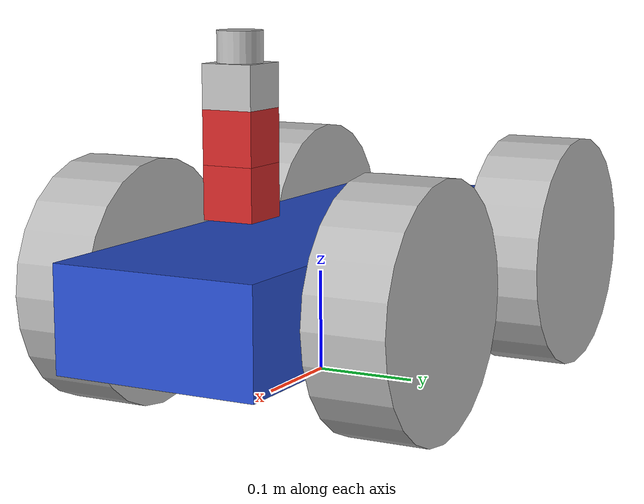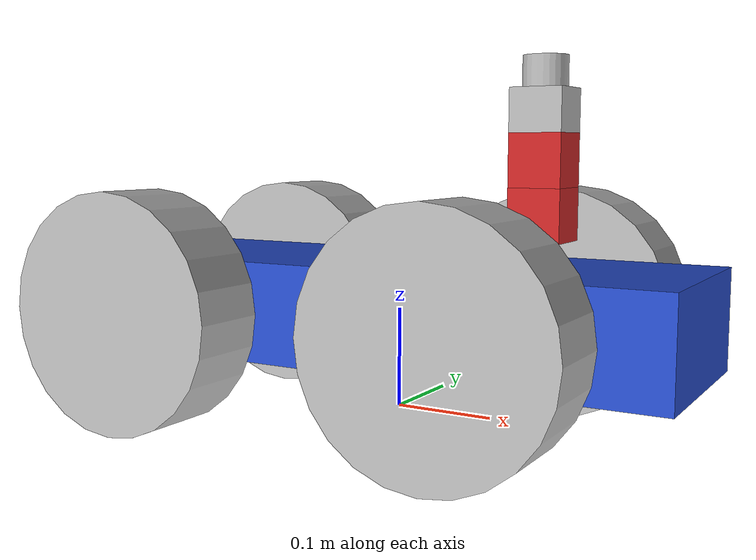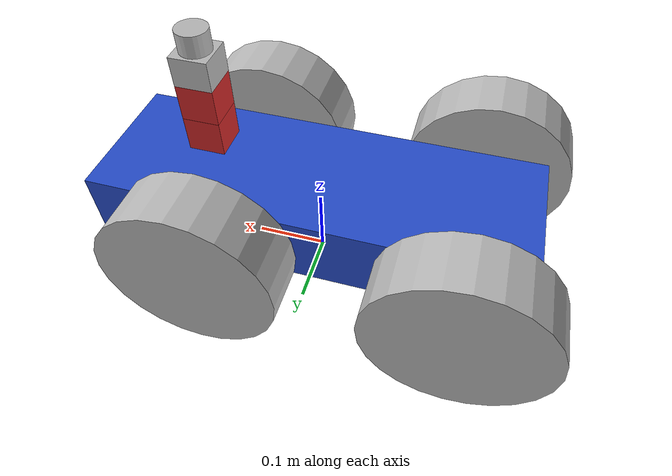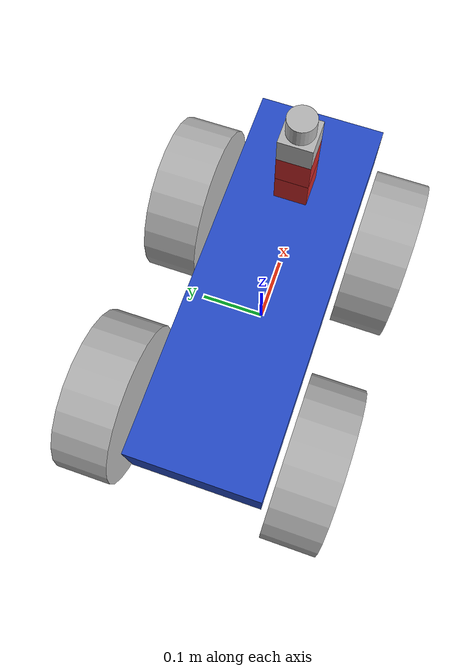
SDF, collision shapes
<?xml version='1.0'?>
<sdf version='1.7'>
  <model name='mobile_warehouse_robot'>
    <link name='base_link'>
      <pose>-0 -0 0.1 0 -0 0</pose>
      <self_collide>0</self_collide>
      <inertial>
        <pose>0 0 0 0 -0 0</pose>
        <inertia>
          <ixx>0.5</ixx>
          <ixy>0</ixy>
          <ixz>0</ixz>
          <iyy>0.5</iyy>
          <iyz>0</iyz>
          <izz>0.5</izz>
        </inertia>
        <mass>40</mass>
      </inertial>
      <enable_wind>0</enable_wind>
      <kinematic>0</kinematic>
      <gravity>1</gravity>
      <visual name='visual'>
        <pose>0 0 0.02 0 -0 0</pose>
        <material>
          <script>
            <uri>file://media/materials/scripts/gazebo.material</uri>
            <name>Gazebo/Blue</name>
          </script>
          <shader type='pixel'>
            <normal_map>__default__</normal_map>
          </shader>
        </material>
        <geometry>
          <box>
            <size>0.6 0.2 0.1</size>
          </box>
        </geometry>
        <transparency>0</transparency>
        <cast_shadows>1</cast_shadows>
      </visual>
      <collision name='collision'>
        <laser_retro>0</laser_retro>
        <max_contacts>10</max_contacts>
        <pose>0 0 0 0 -0 0</pose>
        <geometry>
          <box>
            <size>0.6 0.2 0.1</size>
          </box>
        </geometry>
        <surface>
          <friction>
            <ode>
              <mu>1</mu>
              <mu2>1</mu2>
              <fdir1>0 0 0</fdir1>
              <slip1>0</slip1>
              <slip2>0</slip2>
            </ode>
            <torsional>
              <coefficient>1</coefficient>
              <patch_radius>0</patch_radius>
              <surface_radius>0</surface_radius>
              <use_patch_radius>1</use_patch_radius>
              <ode>
                <slip>0</slip>
              </ode>
            </torsional>
          </friction>
          <bounce>
            <restitution_coefficient>0</restitution_coefficient>
            <threshold>1e+06</threshold>
          </bounce>
          <contact>
            <collide_without_contact>0</collide_without_contact>
            <collide_without_contact_bitmask>1</collide_without_contact_bitmask>
            <collide_bitmask>1</collide_bitmask>
            <ode>
              <soft_cfm>0</soft_cfm>
              <soft_erp>0.2</soft_erp>
              <kp>1e+13</kp>
              <kd>1</kd>
              <max_vel>0.01</max_vel>
              <min_depth>0</min_depth>
            </ode>
            <bullet>
              <split_impulse>1</split_impulse>
              <split_impulse_penetration_threshold>-0.01</split_impulse_penetration_threshold>
              <soft_cfm>0</soft_cfm>
              <soft_erp>0.2</soft_erp>
              <kp>1e+13</kp>
              <kd>1</kd>
            </bullet>
          </contact>
        </surface>
      </collision>
    </link>
    <link name='depth_camera'>
      <inertial>
        <mass>0.1</mass>
        <pose>0 0 0 0 -0 0</pose>
        <inertia>
          <ixx>1</ixx>
          <ixy>0</ixy>
          <ixz>0</ixz>
          <iyy>1</iyy>
          <iyz>0</iyz>
          <izz>1</izz>
        </inertia>
      </inertial>
      <pose>0.15 -0 0.25 0 -0 0</pose>
      <sensor name='depth_camera' type='depth'>
          <update_rate>5.0</update_rate>
          <camera name='head'>
              <horizontal_fov>1.8</horizontal_fov>
              <image>
                  <width>1200</width>
                  <height>1200</height>
                  <format>R8G8B8</format>
              </image>
              <clip>
                  <near>0.01</near>
                  <far>10.0</far>
              </clip>
              <depth_camera>
                  <clip>
                      <near>0.01</near>
                      <far>10.0</far>
                  </clip>
              </depth_camera>
              <noise>
                  <type>gaussian</type>
                  <mean>0</mean>
                  <stddev>0.007</stddev>
              </noise>
          </camera>
          <plugin name='gazebo_ros_depth_camera' filename='libgazebo_ros_camera.so'>
              <alwaysOn>true</alwaysOn>
              <updateRate>5.0</updateRate>
              <cameraName>rrbot/depth_camera</cameraName>
              <frameName>depth_camera_link</frameName>
              <imageTopicName>/depth_camera/image_raw</imageTopicName>
              <cameraInfoTopicName>/depth_camera/camera_info</cameraInfoTopicName>
              <depthImageTopicName>/depth_camera/depth/image_raw</depthImageTopicName>
              <pointCloudTopicName>/depth_camera/points</pointCloudTopicName>
              <pointCloudCutoff>0.01</pointCloudCutoff>
              <pointCloudCutoffMax>10.0</pointCloudCutoffMax>
          </plugin>
      </sensor>

      <self_collide>0</self_collide>
      <enable_wind>0</enable_wind>
      <kinematic>0</kinematic>
      <visual name='cam_visual'>
        <geometry>
          <box>
            <size>0.05 0.05 0.05</size>
          </box>
        </geometry>
        <material>
          <script>
            <uri>file://media/materials/scripts/gazebo.material</uri>
            <name>Gazebo/Red</name>
          </script>
          <shader type='pixel'/>
        </material>
        <pose>0 0 0 0 -0 0</pose>
        <transparency>0</transparency>
        <cast_shadows>1</cast_shadows>
      </visual>
      <collision name='cam_collision'>
        <laser_retro>0</laser_retro>
        <max_contacts>10</max_contacts>
        <pose>0 0 0 0 -0 0</pose>
        <geometry>
          <box>
            <size>0.05 0.05 0.05</size>
          </box>
        </geometry>
        <surface>
          <friction>
            <ode>
              <mu>1</mu>
              <mu2>1</mu2>
              <fdir1>0 0 0</fdir1>
              <slip1>0</slip1>
              <slip2>0</slip2>
            </ode>
            <torsional>
              <coefficient>1</coefficient>
              <patch_radius>0</patch_radius>
              <surface_radius>0</surface_radius>
              <use_patch_radius>1</use_patch_radius>
              <ode>
                <slip>0</slip>
              </ode>
            </torsional>
          </friction>
          <bounce>
            <restitution_coefficient>0</restitution_coefficient>
            <threshold>1e+06</threshold>
          </bounce>
          <contact>
            <collide_without_contact>0</collide_without_contact>
            <collide_without_contact_bitmask>1</collide_without_contact_bitmask>
            <collide_bitmask>1</collide_bitmask>
            <ode>
              <soft_cfm>0</soft_cfm>
              <soft_erp>0.2</soft_erp>
              <kp>1e+13</kp>
              <kd>1</kd>
              <max_vel>0.01</max_vel>
              <min_depth>0</min_depth>
            </ode>
            <bullet>
              <split_impulse>1</split_impulse>
              <split_impulse_penetration_threshold>-0.01</split_impulse_penetration_threshold>
              <soft_cfm>0</soft_cfm>
              <soft_erp>0.2</soft_erp>
              <kp>1e+13</kp>
              <kd>1</kd>
            </bullet>
          </contact>
        </surface>
      </collision>
    </link>
    <link name='camera'>
      <inertial>
        <mass>0.1</mass>
        <pose>0 0 0 0 -0 0</pose>
        <inertia>
          <ixx>1</ixx>
          <ixy>0</ixy>
          <ixz>0</ixz>
          <iyy>1</iyy>
          <iyz>0</iyz>
          <izz>1</izz>
        </inertia>
      </inertial>
      <pose>0.15 -0 0.2 0 -0 0</pose>
      <sensor name='camera1' type='camera'>
        <update_rate>30</update_rate>
        <camera name='head'>
          <horizontal_fov>1.8</horizontal_fov>
          <image>
            <width>1200</width>
            <height>1200</height>
            <format>R8G8B8</format>
          </image>
          <clip>
            <near>0.02</near>
            <far>300</far>
          </clip>
          <noise>
            <type>gaussian</type>
            <mean>0</mean>
            <stddev>0.007</stddev>
          </noise>
        </camera>
        <plugin name='camera_controller' filename='libgazebo_ros_camera.so'>
          <alwaysOn>1</alwaysOn>
          <updateRate>1</updateRate>
          <cameraName>rrbot/camera1</cameraName>
          <imageTopicName>image_raw</imageTopicName>
          <cameraInfoTopicName>camera_info</cameraInfoTopicName>
          <frameName>camera_link</frameName>
          <hackBaseline>0.07</hackBaseline>
          <distortionK1>0.0</distortionK1>
          <distortionK2>0.0</distortionK2>
          <distortionK3>0.0</distortionK3>
          <distortionT1>0.0</distortionT1>
          <distortionT2>0.0</distortionT2>
        </plugin>
      </sensor>
      <self_collide>0</self_collide>
      <enable_wind>0</enable_wind>
      <kinematic>0</kinematic>
      <visual name='cam_visual'>
        <geometry>
          <box>
            <size>0.05 0.05 0.05</size>
          </box>
        </geometry>
        <material>
          <script>
            <uri>file://media/materials/scripts/gazebo.material</uri>
            <name>Gazebo/Red</name>
          </script>
          <shader type='pixel'/>
        </material>
        <pose>0 0 0 0 -0 0</pose>
        <transparency>0</transparency>
        <cast_shadows>1</cast_shadows>
      </visual>
      <collision name='cam_collision'>
        <laser_retro>0</laser_retro>
        <max_contacts>10</max_contacts>
        <pose>0 0 0 0 -0 0</pose>
        <geometry>
          <box>
            <size>0.05 0.05 0.05</size>
          </box>
        </geometry>
        <surface>
          <friction>
            <ode>
              <mu>1</mu>
              <mu2>1</mu2>
              <fdir1>0 0 0</fdir1>
              <slip1>0</slip1>
              <slip2>0</slip2>
            </ode>
            <torsional>
              <coefficient>1</coefficient>
              <patch_radius>0</patch_radius>
              <surface_radius>0</surface_radius>
              <use_patch_radius>1</use_patch_radius>
              <ode>
                <slip>0</slip>
              </ode>
            </torsional>
          </friction>
          <bounce>
            <restitution_coefficient>0</restitution_coefficient>
            <threshold>1e+06</threshold>
          </bounce>
          <contact>
            <collide_without_contact>0</collide_without_contact>
            <collide_without_contact_bitmask>1</collide_without_contact_bitmask>
            <collide_bitmask>1</collide_bitmask>
            <ode>
              <soft_cfm>0</soft_cfm>
              <soft_erp>0.2</soft_erp>
              <kp>1e+13</kp>
              <kd>1</kd>
              <max_vel>0.01</max_vel>
              <min_depth>0</min_depth>
            </ode>
            <bullet>
              <split_impulse>1</split_impulse>
              <split_impulse_penetration_threshold>-0.01</split_impulse_penetration_threshold>
              <soft_cfm>0</soft_cfm>
              <soft_erp>0.2</soft_erp>
              <kp>1e+13</kp>
              <kd>1</kd>
            </bullet>
          </contact>
        </surface>
      </collision>
    </link>
    <link name='laser_link'>
      <inertial>
        <mass>0.1</mass>
        <pose>0 0 0 0 -0 0</pose>
        <inertia>
          <ixx>1</ixx>
          <ixy>0</ixy>
          <ixz>0</ixz>
          <iyy>1</iyy>
          <iyz>0</iyz>
          <izz>1</izz>
        </inertia>
      </inertial>
      <pose>0.15 0 0.31 0 -0 0</pose>
      <sensor name='laser' type='ray'>
        <pose>0.01 0 0.0175 0 -0 0</pose>
        <ray>
          <scan>
            <horizontal>
              <samples>181</samples>
              <resolution>0.2</resolution>
              <min_angle>-0.89</min_angle>
              <max_angle>0.89</max_angle>
            </horizontal>
            <vertical>
              <samples>1</samples>
              <min_angle>0</min_angle>
              <max_angle>0</max_angle>
            </vertical>
          </scan>
          <range>
            <min>0.08</min>
            <max>10</max>
            <resolution>0.01</resolution>
          </range>
        </ray>
        <always_on>1</always_on>
        <update_rate>10</update_rate>
        <visualize>1</visualize>
        <plugin name='laser' filename='libgazebo_ros_ray_sensor.so'>
          <ros>
            <namespace>/</namespace>
            <argument>--ros-args --remap ~/out:=scan</argument>
          </ros>
          <output_type>sensor_msgs/LaserScan</output_type>
        </plugin>
      </sensor>
      <self_collide>0</self_collide>
      <enable_wind>0</enable_wind>
      <kinematic>0</kinematic>
      <visual name='visual'>
        <geometry>
          <mesh>
            <uri>model://hokuyo/meshes/hokuyo.dae</uri>
          </mesh>
        </geometry>
        <material>
          <shader type='pixel'/>
        </material>
        <pose>0 0 0 0 -0 0</pose>
        <transparency>0</transparency>
        <cast_shadows>1</cast_shadows>
      </visual>
      <collision name='collision-base'>
        <laser_retro>0</laser_retro>
        <max_contacts>10</max_contacts>
        <pose>0 0 -0.0145 0 -0 0</pose>
        <geometry>
          <box>
            <size>0.05 0.05 0.041</size>
          </box>
        </geometry>
        <surface>
          <friction>
            <ode>
              <mu>3</mu>
              <mu2>3</mu2>
              <fdir1>0 0 0</fdir1>
              <slip1>0</slip1>
              <slip2>0</slip2>
            </ode>
            <torsional>
              <coefficient>1</coefficient>
              <patch_radius>0</patch_radius>
              <surface_radius>0</surface_radius>
              <use_patch_radius>1</use_patch_radius>
              <ode>
                <slip>0</slip>
              </ode>
            </torsional>
          </friction>
          <bounce>
            <restitution_coefficient>0</restitution_coefficient>
            <threshold>1e+06</threshold>
          </bounce>
          <contact>
            <collide_without_contact>0</collide_without_contact>
            <collide_without_contact_bitmask>1</collide_without_contact_bitmask>
            <collide_bitmask>1</collide_bitmask>
            <ode>
              <soft_cfm>0</soft_cfm>
              <soft_erp>0.2</soft_erp>
              <kp>1e+13</kp>
              <kd>1</kd>
              <max_vel>0.01</max_vel>
              <min_depth>0</min_depth>
            </ode>
            <bullet>
              <split_impulse>1</split_impulse>
              <split_impulse_penetration_threshold>-0.01</split_impulse_penetration_threshold>
              <soft_cfm>0</soft_cfm>
              <soft_erp>0.2</soft_erp>
              <kp>1e+13</kp>
              <kd>1</kd>
            </bullet>
          </contact>
        </surface>
      </collision>
      <collision name='collision-top'>
        <laser_retro>0</laser_retro>
        <max_contacts>10</max_contacts>
        <pose>0 0 0.0205 0 -0 0</pose>
        <geometry>
          <cylinder>
            <radius>0.021</radius>
            <length>0.029</length>
          </cylinder>
        </geometry>
        <surface>
          <friction>
            <ode>
              <mu>1</mu>
              <mu2>1</mu2>
              <fdir1>0 0 0</fdir1>
              <slip1>0</slip1>
              <slip2>0</slip2>
            </ode>
            <torsional>
              <coefficient>1</coefficient>
              <patch_radius>0</patch_radius>
              <surface_radius>0</surface_radius>
              <use_patch_radius>1</use_patch_radius>
              <ode>
                <slip>0</slip>
              </ode>
            </torsional>
          </friction>
          <bounce>
            <restitution_coefficient>0</restitution_coefficient>
            <threshold>1e+06</threshold>
          </bounce>
          <contact>
            <collide_without_contact>0</collide_without_contact>
            <collide_without_contact_bitmask>1</collide_without_contact_bitmask>
            <collide_bitmask>1</collide_bitmask>
            <ode>
              <soft_cfm>0</soft_cfm>
              <soft_erp>0.2</soft_erp>
              <kp>1e+13</kp>
              <kd>1</kd>
              <max_vel>0.01</max_vel>
              <min_depth>0</min_depth>
            </ode>
            <bullet>
              <split_impulse>1</split_impulse>
              <split_impulse_penetration_threshold>-0.01</split_impulse_penetration_threshold>
              <soft_cfm>0</soft_cfm>
              <soft_erp>0.2</soft_erp>
              <kp>1e+13</kp>
              <kd>1</kd>
            </bullet>
          </contact>
        </surface>
      </collision>
    </link>

    <link name='left_wheel'>
      <pose>0.12 0.15 0.1 -0.000109 1.5707 1.57059</pose>
      <self_collide>0</self_collide>
      <inertial>
        <pose>0 0 0 0 -0 0</pose>
        <inertia>
          <ixx>1</ixx>
          <ixy>0</ixy>
          <ixz>0</ixz>
          <iyy>1</iyy>
          <iyz>0</iyz>
          <izz>1</izz>
        </inertia>
        <mass>1</mass>
      </inertial>
      <enable_wind>0</enable_wind>
      <kinematic>0</kinematic>
      <visual name='visual'>
        <geometry>
          <cylinder>
            <radius>0.12</radius>
            <length>0.08</length>
          </cylinder>
        </geometry>
        <material>
          <shader type='pixel'/>
        </material>
        <pose>0 0 0 0 -0 0</pose>
        <transparency>0</transparency>
        <cast_shadows>1</cast_shadows>
      </visual>
      <collision name='collision'>
        <laser_retro>0</laser_retro>
        <max_contacts>10</max_contacts>
        <pose>0 0 0 0 -0 0</pose>
        <geometry>
          <cylinder>
            <radius>0.12</radius>
            <length>0.08</length>
          </cylinder>
        </geometry>
        <surface>
          <friction>
            <ode>
              <mu>1</mu>
              <mu2>1</mu2>
              <fdir1>0 0 0</fdir1>
              <slip1>0</slip1>
              <slip2>0</slip2>
            </ode>
            <torsional>
              <coefficient>1</coefficient>
              <patch_radius>0</patch_radius>
              <surface_radius>0</surface_radius>
              <use_patch_radius>1</use_patch_radius>
              <ode>
                <slip>0</slip>
              </ode>
            </torsional>
          </friction>
          <bounce>
            <restitution_coefficient>0</restitution_coefficient>
            <threshold>1e+06</threshold>
          </bounce>
          <contact>
            <collide_without_contact>0</collide_without_contact>
            <collide_without_contact_bitmask>1</collide_without_contact_bitmask>
            <collide_bitmask>1</collide_bitmask>
            <ode>
              <soft_cfm>0</soft_cfm>
              <soft_erp>0.2</soft_erp>
              <kp>1e+13</kp>
              <kd>1</kd>
              <max_vel>0.01</max_vel>
              <min_depth>0</min_depth>
            </ode>
            <bullet>
              <split_impulse>1</split_impulse>
              <split_impulse_penetration_threshold>-0.01</split_impulse_penetration_threshold>
              <soft_cfm>0</soft_cfm>
              <soft_erp>0.2</soft_erp>
              <kp>1e+13</kp>
              <kd>1</kd>
            </bullet>
          </contact>
        </surface>
      </collision>
    </link>
    <link name='left_wheel_back'>
      <pose>-0.22 0.15 0.1 -0.000109 1.5707 1.57059</pose>
      <self_collide>0</self_collide>
      <inertial>
        <pose>0 0 0 0 -0 0</pose>
        <inertia>
          <ixx>1</ixx>
          <ixy>0</ixy>
          <ixz>0</ixz>
          <iyy>1</iyy>
          <iyz>0</iyz>
          <izz>1</izz>
        </inertia>
        <mass>1</mass>
      </inertial>
      <enable_wind>0</enable_wind>
      <kinematic>0</kinematic>
      <visual name='visual'>
        <geometry>
          <cylinder>
            <radius>0.12</radius>
            <length>0.08</length>
          </cylinder>
        </geometry>
        <material>
          <shader type='pixel'/>
        </material>
        <pose>0 0 0 0 -0 0</pose>
        <transparency>0</transparency>
        <cast_shadows>1</cast_shadows>
      </visual>
      <collision name='collision'>
        <laser_retro>0</laser_retro>
        <max_contacts>10</max_contacts>
        <pose>0 0 0 0 -0 0</pose>
        <geometry>
          <cylinder>
            <radius>0.12</radius>
            <length>0.08</length>
          </cylinder>
        </geometry>
        <surface>
          <friction>
            <ode>
              <mu>1</mu>
              <mu2>1</mu2>
              <fdir1>0 0 0</fdir1>
              <slip1>0</slip1>
              <slip2>0</slip2>
            </ode>
            <torsional>
              <coefficient>1</coefficient>
              <patch_radius>0</patch_radius>
              <surface_radius>0</surface_radius>
              <use_patch_radius>1</use_patch_radius>
              <ode>
                <slip>0</slip>
              </ode>
            </torsional>
          </friction>
          <bounce>
            <restitution_coefficient>0</restitution_coefficient>
            <threshold>1e+06</threshold>
          </bounce>
          <contact>
            <collide_without_contact>0</collide_without_contact>
            <collide_without_contact_bitmask>1</collide_without_contact_bitmask>
            <collide_bitmask>1</collide_bitmask>
            <ode>
              <soft_cfm>0</soft_cfm>
              <soft_erp>0.2</soft_erp>
              <kp>1e+13</kp>
              <kd>1</kd>
              <max_vel>0.01</max_vel>
              <min_depth>0</min_depth>
            </ode>
            <bullet>
              <split_impulse>1</split_impulse>
              <split_impulse_penetration_threshold>-0.01</split_impulse_penetration_threshold>
              <soft_cfm>0</soft_cfm>
              <soft_erp>0.2</soft_erp>
              <kp>1e+13</kp>
              <kd>1</kd>
            </bullet>
          </contact>
        </surface>
      </collision>
    </link>
    <link name='right_wheel'>
      <pose>0.12 -0.15 0.1 -0.000109 1.5707 1.57059</pose>
      <self_collide>0</self_collide>
      <inertial>
        <pose>0 0 0 0 -0 0</pose>
        <inertia>
          <ixx>1</ixx>
          <ixy>0</ixy>
          <ixz>0</ixz>
          <iyy>1</iyy>
          <iyz>0</iyz>
          <izz>1</izz>
        </inertia>
        <mass>1</mass>
      </inertial>
      <enable_wind>0</enable_wind>
      <kinematic>0</kinematic>
      <visual name='visual'>
        <geometry>
          <cylinder>
            <radius>0.12</radius>
            <length>0.08</length>
          </cylinder>
        </geometry>
        <material>
          <shader type='pixel'/>
        </material>
        <pose>0 0 0 0 -0 0</pose>
        <transparency>0</transparency>
        <cast_shadows>1</cast_shadows>
      </visual>
      <collision name='collision'>
        <laser_retro>0</laser_retro>
        <max_contacts>10</max_contacts>
        <pose>0 0 0 0 -0 0</pose>
        <geometry>
          <cylinder>
            <radius>0.12</radius>
            <length>0.08</length>
          </cylinder>
        </geometry>
        <surface>
          <friction>
            <ode>
              <mu>1</mu>
              <mu2>1</mu2>
              <fdir1>0 0 0</fdir1>
              <slip1>0</slip1>
              <slip2>0</slip2>
            </ode>
            <torsional>
              <coefficient>1</coefficient>
              <patch_radius>0</patch_radius>
              <surface_radius>0</surface_radius>
              <use_patch_radius>1</use_patch_radius>
              <ode>
                <slip>0</slip>
              </ode>
            </torsional>
          </friction>
          <bounce>
            <restitution_coefficient>0</restitution_coefficient>
            <threshold>1e+06</threshold>
          </bounce>
          <contact>
            <collide_without_contact>0</collide_without_contact>
            <collide_without_contact_bitmask>1</collide_without_contact_bitmask>
            <collide_bitmask>1</collide_bitmask>
            <ode>
              <soft_cfm>0</soft_cfm>
              <soft_erp>0.2</soft_erp>
              <kp>1e+13</kp>
              <kd>1</kd>
              <max_vel>0.01</max_vel>
              <min_depth>0</min_depth>
            </ode>
            <bullet>
              <split_impulse>1</split_impulse>
              <split_impulse_penetration_threshold>-0.01</split_impulse_penetration_threshold>
              <soft_cfm>0</soft_cfm>
              <soft_erp>0.2</soft_erp>
              <kp>1e+13</kp>
              <kd>1</kd>
            </bullet>
          </contact>
        </surface>
      </collision>
    </link>
    <link name='right_wheel_back'>
      <pose>-0.22 -0.15 0.1 -0.000109 1.5707 1.57059</pose>
      <self_collide>0</self_collide>
      <inertial>
        <pose>0 0 0 0 -0 0</pose>
        <inertia>
          <ixx>1</ixx>
          <ixy>0</ixy>
          <ixz>0</ixz>
          <iyy>1</iyy>
          <iyz>0</iyz>
          <izz>1</izz>
        </inertia>
        <mass>1</mass>
      </inertial>
      <enable_wind>0</enable_wind>
      <kinematic>0</kinematic>
      <visual name='visual'>
        <geometry>
          <cylinder>
            <radius>0.12</radius>
            <length>0.08</length>
          </cylinder>
        </geometry>
        <material>
          <shader type='pixel'/>
        </material>
        <pose>0 0 0 0 -0 0</pose>
        <transparency>0</transparency>
        <cast_shadows>1</cast_shadows>
      </visual>
      <collision name='collision'>
        <laser_retro>0</laser_retro>
        <max_contacts>10</max_contacts>
        <pose>0 0 0 0 -0 0</pose>
        <geometry>
          <cylinder>
            <radius>0.12</radius>
            <length>0.08</length>
          </cylinder>
        </geometry>
        <surface>
          <friction>
            <ode>
              <mu>1</mu>
              <mu2>1</mu2>
              <fdir1>0 0 0</fdir1>
              <slip1>0</slip1>
              <slip2>0</slip2>
            </ode>
            <torsional>
              <coefficient>1</coefficient>
              <patch_radius>0</patch_radius>
              <surface_radius>0</surface_radius>
              <use_patch_radius>1</use_patch_radius>
              <ode>
                <slip>0</slip>
              </ode>
            </torsional>
          </friction>
          <bounce>
            <restitution_coefficient>0</restitution_coefficient>
            <threshold>1e+06</threshold>
          </bounce>
          <contact>
            <collide_without_contact>0</collide_without_contact>
            <collide_without_contact_bitmask>1</collide_without_contact_bitmask>
            <collide_bitmask>1</collide_bitmask>
            <ode>
              <soft_cfm>0</soft_cfm>
              <soft_erp>0.2</soft_erp>
              <kp>1e+13</kp>
              <kd>1</kd>
              <max_vel>0.01</max_vel>
              <min_depth>0</min_depth>
            </ode>
            <bullet>
              <split_impulse>1</split_impulse>
              <split_impulse_penetration_threshold>-0.01</split_impulse_penetration_threshold>
              <soft_cfm>0</soft_cfm>
              <soft_erp>0.2</soft_erp>
              <kp>1e+13</kp>
              <kd>1</kd>
            </bullet>
          </contact>
        </surface>
      </collision>
    </link>
    <joint name='camera_joint' type='fixed'>
      <parent>base_link</parent>
      <child>camera</child>
      <pose>0 0 0 0 -0 0</pose>
      <physics>
        <ode>
          <limit>
            <cfm>0</cfm>
            <erp>0.2</erp>
          </limit>
          <suspension>
            <cfm>0</cfm>
            <erp>0.2</erp>
          </suspension>
        </ode>
      </physics>
    </joint>
    <joint name='laser_joint' type='fixed'>
      <parent>base_link</parent>
      <child>laser_link</child>
      <pose>0 0 0 0 -0 0</pose>
      <physics>
        <ode>
          <limit>
            <cfm>0</cfm>
            <erp>0.2</erp>
          </limit>
          <suspension>
            <cfm>0</cfm>
            <erp>0.2</erp>
          </suspension>
        </ode>
      </physics>
    </joint>
    <joint name='depth_joint' type='fixed'>
      <parent>base_link</parent>
      <child>depth_camera</child>
      <pose>0 0 0 0 -0 0</pose>
      <physics>
        <ode>
          <limit>
            <cfm>0</cfm>
            <erp>0.2</erp>
          </limit>
          <suspension>
            <cfm>0</cfm>
            <erp>0.2</erp>
          </suspension>
        </ode>
      </physics>
    </joint>
    <joint name='left_back_wheel_hinge' type='fixed'>
      <parent>base_link</parent>
      <child>left_wheel_back</child>
      <pose>0 0 0 0 -0 0</pose>
      <physics>
        <ode>
          <limit>
            <cfm>0</cfm>
            <erp>0.2</erp>
          </limit>
          <suspension>
            <cfm>0</cfm>
            <erp>0.2</erp>
          </suspension>
        </ode>
      </physics>
    </joint>
    <joint name='left_wheel_hinge' type='revolute'>
      <parent>base_link</parent>
      <child>left_wheel</child>
      <pose>0 0 -0.03 0 -0 0</pose>
      <axis>
        <xyz>0 0 1</xyz>
        <limit>
          <lower>-1e+16</lower>
          <upper>1e+16</upper>
          <effort>-1</effort>
          <velocity>-1</velocity>
        </limit>
        <dynamics>
          <spring_reference>0</spring_reference>
          <spring_stiffness>0</spring_stiffness>
          <damping>0</damping>
          <friction>0</friction>
        </dynamics>
      </axis>
      <physics>
        <ode>
          <limit>
            <cfm>0</cfm>
            <erp>0.2</erp>
          </limit>
          <suspension>
            <cfm>0</cfm>
            <erp>0.2</erp>
          </suspension>
        </ode>
      </physics>
    </joint>
    <joint name='right_back_wheel_hinge' type='fixed'>
      <parent>base_link</parent>
      <child>right_wheel_back</child>
      <pose>0 0 0 0 -0 0</pose>
      <physics>
        <ode>
          <limit>
            <cfm>0</cfm>
            <erp>0.2</erp>
          </limit>
          <suspension>
            <cfm>0</cfm>
            <erp>0.2</erp>
          </suspension>
        </ode>
      </physics>
    </joint>
    <joint name='right_wheel_hinge' type='revolute'>
      <parent>base_link</parent>
      <child>right_wheel</child>
      <pose>0 0 0.03 0 -0 0</pose>
      <axis>
        <xyz>0 0 1</xyz>
        <limit>
          <lower>-1e+16</lower>
          <upper>1e+16</upper>
          <effort>-1</effort>
          <velocity>-1</velocity>
        </limit>
        <dynamics>
          <spring_reference>0</spring_reference>
          <spring_stiffness>0</spring_stiffness>
          <damping>0</damping>
          <friction>0</friction>
        </dynamics>
      </axis>
      <physics>
        <ode>
          <limit>
            <cfm>0</cfm>
            <erp>0.2</erp>
          </limit>
          <suspension>
            <cfm>0</cfm>
            <erp>0.2</erp>
          </suspension>
        </ode>
      </physics>
    </joint>
    <static>0</static>
    <allow_auto_disable>1</allow_auto_disable>
    <plugin name='diff_drive' filename='libgazebo_ros_diff_drive.so'>
      <ros>
        <namespace>/</namespace>
        <remapping>cmd_vel:=cmd_vel</remapping>
        <remapping>odom:=odom</remapping>
      </ros>
      <left_joint>left_wheel_hinge</left_joint>
      <right_joint>right_wheel_hinge</right_joint>
      <wheel_separation>0.3</wheel_separation>
      <wheel_diameter>0.24</wheel_diameter>
      <max_wheel_torque>20</max_wheel_torque>
      <max_wheel_acceleration>1.0</max_wheel_acceleration>
      <publish_odom>1</publish_odom>
      <publish_odom_tf>1</publish_odom_tf>
      <publish_wheel_tf>1</publish_wheel_tf>
      <odometry_frame>odom</odometry_frame>
      <robot_base_frame>base_link</robot_base_frame>
    </plugin>
  </model>
</sdf>
